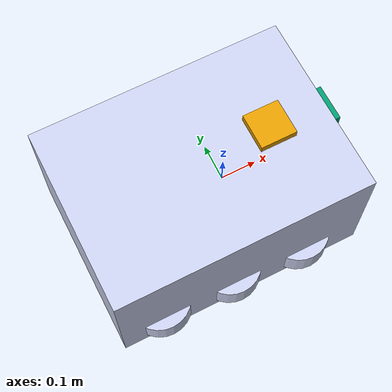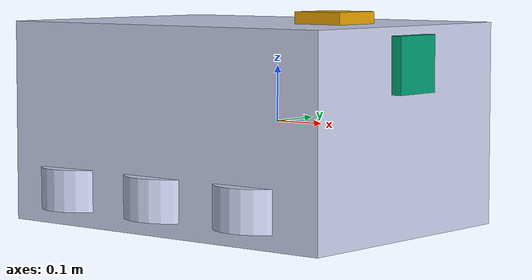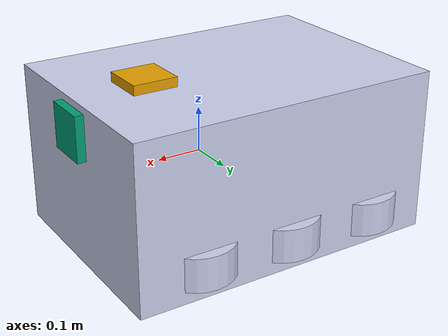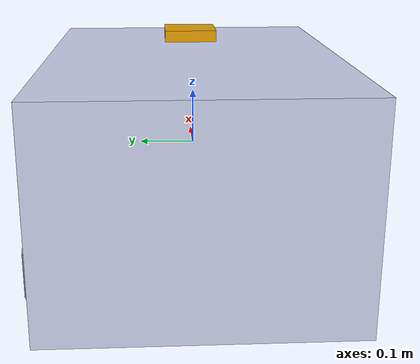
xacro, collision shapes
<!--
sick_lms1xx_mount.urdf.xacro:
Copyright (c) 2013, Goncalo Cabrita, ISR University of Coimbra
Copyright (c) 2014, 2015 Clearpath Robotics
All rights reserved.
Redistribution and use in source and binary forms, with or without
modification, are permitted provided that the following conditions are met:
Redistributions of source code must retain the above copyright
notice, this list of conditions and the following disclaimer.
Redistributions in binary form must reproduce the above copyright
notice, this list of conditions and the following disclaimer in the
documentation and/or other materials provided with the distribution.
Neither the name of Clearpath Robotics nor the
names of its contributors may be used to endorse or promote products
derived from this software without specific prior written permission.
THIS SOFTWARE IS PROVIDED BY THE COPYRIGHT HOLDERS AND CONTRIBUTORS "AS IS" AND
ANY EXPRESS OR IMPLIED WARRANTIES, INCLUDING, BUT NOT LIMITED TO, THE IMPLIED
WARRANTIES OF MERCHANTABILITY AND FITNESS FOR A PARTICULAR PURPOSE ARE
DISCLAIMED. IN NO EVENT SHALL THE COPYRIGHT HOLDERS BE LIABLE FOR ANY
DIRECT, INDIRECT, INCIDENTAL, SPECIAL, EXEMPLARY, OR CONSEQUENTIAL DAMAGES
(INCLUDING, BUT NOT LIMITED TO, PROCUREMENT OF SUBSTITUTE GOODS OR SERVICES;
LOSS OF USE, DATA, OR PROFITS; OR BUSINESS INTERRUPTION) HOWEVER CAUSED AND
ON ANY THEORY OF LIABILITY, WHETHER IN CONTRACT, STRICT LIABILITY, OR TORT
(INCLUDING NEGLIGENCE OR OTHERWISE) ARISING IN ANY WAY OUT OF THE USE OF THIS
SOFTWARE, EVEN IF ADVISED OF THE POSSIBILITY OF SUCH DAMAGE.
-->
<?xml version="1.0"?>

<robot
  name="argo_urdf_2" xmlns:xacro="http://www.ros.org/wiki/xacro">

  <xacro:property name="camera_link" value="0.05" /> <!-- Size of square 'camera' box -->
  <!-- Import all Gazebo-customization elements, including Gazebo colors -->
  <xacro:include filename="$(find argo_description)/urdf/argo_urdf_2.gazebo" />
  <!-- Import Rviz colors -->
  <xacro:include filename="$(find argo_description)/urdf/materials.xacro" />
  <xacro:include filename="$(find argo_description)/urdf/accessories/kinect_camera.urdf.xacro"/>
  <xacro:include filename="$(find argo_description)/urdf/accessories/sick_lms1xx_mount.urdf.xacro"/>
  <xacro:include filename="$(find argo_description)/urdf/accessories/sensor_arch.urdf.xacro"/>

    <property name="M_PI" value="3.14159"/>

<link name="base_link"/>

  <link
    name="argo_base">
    <inertial>
      <origin
        xyz="-0.0287146112802265 2.27427526650059E-06 -0.0381581636610044"
        rpy="0 0 0" />
      <mass
        value="32.9230854907662" />
      <inertia
        ixx="0.50262556870673"
        ixy="2.64755785172109E-05"
        ixz="0.0516273031694707"
        iyy="1.30944756370371"
        iyz="6.39030326038844E-06"
        izz="1.57981157521551" />
    </inertial>
    <visual>
      <origin
        xyz="0 0 0"
        rpy="0 0 0" />
      <geometry>
        <mesh
          filename="package://argo_description/meshes/argo_base.STL" />
      </geometry>
      <material
        name="">
        <color
          rgba="0.792156862745098 0.819607843137255 0.933333333333333 1" />
      </material>
    </visual>
    <collision>
      <origin
        xyz="0 0 0"
        rpy="0 0 0" />
      <geometry>
        <mesh
          filename="package://argo_description/meshes/argo_base_col.STL" />
      </geometry>
    </collision>
  </link>
  <joint name="base_link_joint" type="fixed">
      <origin xyz="0 0 0" rpy="0 0 0" />
      <parent link="base_link" />
      <child link="argo_base" />
    </joint>
  <link
    name="FLW">
    <inertial>
      <origin
        xyz="0 0.0156139504736138 0"
        rpy="0 0 0" />
      <mass
        value="1.50789368049402" />
      <inertia
        ixx="0.00365307678558648"
        ixy="5.1636108652648E-20"
        ixz="2.64359085585098E-19"
        iyy="0.00597955732075583"
        iyz="-2.08311224067256E-21"
        izz="0.00365307678558648" />
    </inertial>
    <visual>
      <origin
        xyz="0 0 0"
        rpy="0 0 0" />
      <geometry>
        <mesh
          filename="package://argo_description/meshes/FLW.STL" />
      </geometry>
      <material
        name="">
        <color
          rgba="0.792156862745098 0.819607843137255 0.933333333333333 1" />
      </material>
    </visual>
    <collision>
      <origin
        xyz="0 0 0"
        rpy="0 0 0" />
      <geometry>
        <!--mesh
          filename="package://argo_description/meshes/FLW_col.STL" /-->
          <cylinder length="0.0762" radius="0.085" />
      </geometry>
    </collision>
  </link>
  <joint
    name="FLW_cont"
    type="continuous">
    <origin
      xyz="0.12882 0.19812 -0.12406"
      rpy="0 -1.1994E-16 0" />
    <parent
      link="argo_base" />
    <child
      link="FLW" />
    <axis
      xyz="0 1 0" />
  </joint>
  <link
    name="MLW">
    <inertial>
      <origin
        xyz="-1.11022302462516E-16 0.0156139504736138 -2.77555756156289E-17"
        rpy="0 0 0" />
      <mass
        value="1.50789368049402" />
      <inertia
        ixx="0.00365307678558648"
        ixy="-1.96783860550682E-20"
        ixz="-1.53748539592062E-19"
        iyy="0.00597955732075583"
        iyz="2.56422756461994E-20"
        izz="0.00365307678558648" />
    </inertial>
    <visual>
      <origin
        xyz="0 0 0"
        rpy="0 0 0" />
      <geometry>
        <mesh
          filename="package://argo_description/meshes/MLW.STL" />
      </geometry>
      <material
        name="">
        <color
          rgba="0.792156862745098 0.819607843137255 0.933333333333333 1" />
      </material>
    </visual>
    <collision>
      <origin
        xyz="0 0 0"
        rpy="0 0 0" />
      <geometry>
        <!--mesh
          filename="package://argo_description/meshes/MLW_col.STL" /-->
          <cylinder length="0.0762" radius="0.085" />
      </geometry>
    </collision>
  </link>
  <joint
    name="MLW_cont"
    type="continuous">
    <origin
      xyz="-0.079459 0.19812 -0.12406"
      rpy="0 -1.1994E-16 0" />
    <parent
      link="argo_base" />
    <child
      link="MLW" />
    <axis
      xyz="0 1 0" />
  </joint>
  <link
    name="RLW">
    <inertial>
      <origin
        xyz="1.11022302462516E-16 0.0156139504736138 -8.32667268468867E-17"
        rpy="0 0 0" />
      <mass
        value="1.50789368049402" />
      <inertia
        ixx="0.00365307678558648"
        ixy="-7.0757132097532E-20"
        ixz="2.68751351881889E-19"
        iyy="0.00597955732075583"
        iyz="1.10554828062947E-19"
        izz="0.00365307678558648" />
    </inertial>
    <visual>
      <origin
        xyz="0 0 0"
        rpy="0 0 0" />
      <geometry>
        <mesh
          filename="package://argo_description/meshes/RLW.STL" />
      </geometry>
      <material
        name="">
        <color
          rgba="0.792156862745098 0.819607843137255 0.933333333333333 1" />
      </material>
    </visual>
    <collision>
      <origin
        xyz="0 0 0"
        rpy="0 0 0" />
      <geometry>
        <!--mesh
          filename="package://argo_description/meshes/RLW_col.STL" /-->
          <cylinder length="0.0762" radius="0.085" />
      </geometry>
    </collision>
  </link>
  <joint
    name="RLW_cont"
    type="continuous">
    <origin
      xyz="-0.28774 0.19812 -0.12406"
      rpy="0 -1.1994E-16 0" />
    <parent
      link="argo_base" />
    <child
      link="RLW" />
    <axis
      xyz="0 1 0" />
  </joint>
  <link
    name="FRW">
    <inertial>
      <origin
        xyz="5.55111512312578E-17 -0.0156139504736139 0"
        rpy="0 0 0" />
      <mass
        value="1.50789368049402" />
      <inertia
        ixx="0.00365307678558648"
        ixy="4.05259849993083E-20"
        ixz="4.25308640713539E-19"
        iyy="0.00597955732075583"
        iyz="-4.92635009524994E-20"
        izz="0.00365307678558648" />
    </inertial>
    <visual>
      <origin
        xyz="0 0 0"
        rpy="0 0 0" />
      <geometry>
        <mesh
          filename="package://argo_description/meshes/FRW.STL" />
      </geometry>
      <material
        name="">
        <color
          rgba="0.792156862745098 0.819607843137255 0.933333333333333 1" />
      </material>
    </visual>
    <collision>
      <origin
        xyz="0 0 0"
        rpy="0 0 0" />
      <geometry>
        <!--mesh
          filename="package://argo_description/meshes/FRW_col.STL" /-->
          <cylinder length="0.0762" radius="0.085" />
      </geometry>
    </collision>
  </link>
  <joint
    name="FRW_cont"
    type="continuous">
    <origin
      xyz="0.128821215414625 -0.19812 -0.124058737135444"
      rpy="0 0 0" />
    <parent
      link="argo_base" />
    <child
      link="FRW" />
    <axis
      xyz="0 1 0" />
  </joint>
  <link
    name="MRW">
    <inertial>
      <origin
        xyz="0 -0.0156139504736138 1.38777878078145E-16"
        rpy="0 0 0" />
      <mass
        value="1.50789368049402" />
      <inertia
        ixx="0.00365307678558648"
        ixy="1.31117846911124E-21"
        ixz="-5.15282286567131E-19"
        iyy="0.00597955732075583"
        iyz="-2.1351225407273E-20"
        izz="0.00365307678558648" />
    </inertial>
    <visual>
      <origin
        xyz="0 0 0"
        rpy="0 0 0" />
      <geometry>
        <mesh
          filename="package://argo_description/meshes/MRW.STL" />
      </geometry>
      <material
        name="">
        <color
          rgba="0.792156862745098 0.819607843137255 0.933333333333333 1" />
      </material>
    </visual>
    <collision>
      <origin
        xyz="0 0 0"
        rpy="0 0 0" />
      <geometry>
        <!--mesh
          filename="package://argo_description/meshes/MRW_col.STL" /-->
          <cylinder length="0.0762" radius="0.085" />
      </geometry>
    </collision>
  </link>
  <joint
    name="MRW_cont"
    type="continuous">
    <origin
      xyz="-0.079459 -0.19812 -0.12406"
      rpy="0 -1.1994E-16 0" />
    <parent
      link="argo_base" />
    <child
      link="MRW" />
    <axis
      xyz="0 1 0" />
  </joint>
  <link
    name="RRW">
    <inertial>
      <origin
        xyz="-1.11022302462516E-16 -0.0156139504736139 0"
        rpy="0 0 0" />
      <mass
        value="1.50789368049402" />
      <inertia
        ixx="0.00365307678558648"
        ixy="1.06637185456317E-19"
        ixz="1.35525271560688E-20"
        iyy="0.00597955732075583"
        iyz="-1.42529762888991E-20"
        izz="0.00365307678558648" />
    </inertial>
    <visual>
      <origin
        xyz="0 0 0"
        rpy="0 0 0" />
      <geometry>
        <mesh
          filename="package://argo_description/meshes/RRW.STL" />
      </geometry>
      <material
        name="">
        <color
          rgba="0.792156862745098 0.819607843137255 0.933333333333333 1" />
      </material>
    </visual>
    <collision>
      <origin
        xyz="0 0 0"
        rpy="0 0 0" />
      <geometry>
        <!--mesh
          filename="package://argo_description/meshes/RRW_col.STL" /-->
          <cylinder length="0.0762" radius="0.085" />
      </geometry>
    </collision>
  </link>
  <joint
    name="RRW_cont"
    type="continuous">
    <origin
      xyz="-0.28774 -0.19812 -0.12406"
      rpy="0 -0.010714 0" />
    <parent
      link="argo_base" />
    <child
      link="RRW" />
    <axis
      xyz="0 1 0" />
  </joint>

   <!-- Hokuyo Laser -->
    <joint name="hokuyo_joint" type="fixed">
    <axis xyz="0 1 0" />
    <origin xyz="0.128821215414625 0 0.15" rpy="0 0 3.14"/>
    <parent link="argo_base"/>
    <child link="hokuyo_link"/>
  </joint>
  <link name="hokuyo_link">
    <collision>
      <origin xyz="0 0 0" rpy="0 0 0"/>
      <geometry>
	<box size="0.1 0.1 0.1"/>
      </geometry>
    </collision>

    <visual>
      <origin xyz="0 0 0" rpy="0 0 0"/>
      <geometry>
        <mesh filename="package://argo_description/meshes/hokuyo.dae"/>
      </geometry>
    </visual>

    <inertial>
      <mass value="1e-5" />
      <origin xyz="0 0 0" rpy="0 0 0"/>
      <inertia ixx="1e-6" ixy="0" ixz="0" iyy="1e-6" iyz="0" izz="1e-6" />
    </inertial>
  </link>

  <joint name="camera_joint" type="fixed">
    <axis xyz="0 1 0" />
    <origin xyz="0.128821215414625 0 0.14" rpy="0 0 0"/>
    <parent link="argo_base"/>
    <child link="camera_link"/>
  </joint>

  <!-- Camera -->
  <link name="camera_link">
    <collision>
      <origin xyz="0 0 0" rpy="0 0 0"/>
      <geometry>
	<box size="${camera_link} ${camera_link} ${camera_link}"/>
      </geometry>
    </collision>

    <visual>
      <origin xyz="0 0 0" rpy="0 0 0"/>
      <geometry>
	<box size="${camera_link} ${camera_link} ${camera_link}"/>
      </geometry>
      <material name="red"/>
    </visual>

    <inertial>
      <mass value="1e-5" />
      <origin xyz="0 0 0" rpy="0 0 0"/>
      <inertia ixx="1e-6" ixy="0" ixz="0" iyy="1e-6" iyz="0" izz="1e-6" />
    </inertial>
  </link>

  <transmission name="FL_wheel_trans" type="SimpleTransmission">
			<type>transmission_interface/SimpleTransmission</type>
			<actuator name="FL_wheel_motor">
				<mechanicalReduction>1</mechanicalReduction>
			</actuator>
			<joint name="FLW_cont">
				<hardwareInterface>VelocityJointInterface</hardwareInterface>
			</joint>
		</transmission>

  <transmission name="ML_wheel_trans" type="SimpleTransmission">
			<type>transmission_interface/SimpleTransmission</type>
			<actuator name="ML_wheel_motor">
				<mechanicalReduction>1</mechanicalReduction>
			</actuator>
			<joint name="MLW_cont">
				<hardwareInterface>VelocityJointInterface</hardwareInterface>
			</joint>
		</transmission>

  <transmission name="RL_wheel_trans" type="SimpleTransmission">
			<type>transmission_interface/SimpleTransmission</type>
			<actuator name="RL_wheel_motor">
				<mechanicalReduction>1</mechanicalReduction>
			</actuator>
			<joint name="RLW_cont">
				<hardwareInterface>VelocityJointInterface</hardwareInterface>
			</joint>
		</transmission>

  <transmission name="FR_wheel_trans" type="SimpleTransmission">
			<type>transmission_interface/SimpleTransmission</type>
			<actuator name="FR_wheel_motor">
				<mechanicalReduction>1</mechanicalReduction>
			</actuator>
			<joint name="FRW_cont">
				<hardwareInterface>VelocityJointInterface</hardwareInterface>
			</joint>
		</transmission>

  <transmission name="MR_wheel_trans" type="SimpleTransmission">
			<type>transmission_interface/SimpleTransmission</type>
			<actuator name="MR_wheel_motor">
				<mechanicalReduction>1</mechanicalReduction>
			</actuator>
			<joint name="MRW_cont">
				<hardwareInterface>VelocityJointInterface</hardwareInterface>
			</joint>
		</transmission>

  <transmission name="RR_wheel_trans" type="SimpleTransmission">
			<type>transmission_interface/SimpleTransmission</type>
			<actuator name="RR_wheel_motor">
				<mechanicalReduction>1</mechanicalReduction>
			</actuator>
			<joint name="RRW_cont">
				<hardwareInterface>VelocityJointInterface</hardwareInterface>
			</joint>
		</transmission>

      <sick_lms1xx_mount prefix="base" topic="scan"/>

      <joint name="laser_mount_joint" type="fixed">
        <origin xyz="$(optenv ARGO_LMS1XX_XYZ 0.2206 0.0 0.00635)"
                rpy="$(optenv ARGO_LMS1XX_RPY 0.0 0.0 0.0)" />
        <parent link="argo_base" />
        <child link="base_laser_mount" />
      </joint>

</robot>

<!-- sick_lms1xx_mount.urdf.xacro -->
<robot xmlns:xacro="http://ros.org/wiki/xacro">

  <xacro:include filename="$(find lms1xx)/urdf/sick_lms1xx.urdf.xacro" />

  <xacro:macro name="sick_lms1xx_mount" params="prefix topic">

  <sick_lms1xx frame="${prefix}_laser" topic="${topic}" />

    <link name="${prefix}_laser_mount">
      <visual>
        <origin xyz="0 0 0" rpy="0 0 ${-M_PI/2}" />
        <geometry>
          <!-- Origin of this mesh is the base of the bracket. -->
          <mesh filename="package://argo_description/meshes/accessories/lms1xx_mount.dae" />
        </geometry>
      </visual>
      <collision>
        <origin xyz="0 0 .0585" rpy="0 0 0" />
        <geometry>
          <box size=".1 .108 .117" />
        </geometry>
      </collision>
    </link>

    <joint name="${prefix}_laser_joint" type="fixed">
      <!-- This offset is from the base of the bracket to the LIDAR's focal point. -->
      <origin xyz="0.0352 0 0.0566" rpy="${M_PI} 0 0" />
      <parent link="${prefix}_laser_mount" />
      <child link="${prefix}_laser" />
    </joint>

  </xacro:macro>

</robot>

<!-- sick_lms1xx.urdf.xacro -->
<robot xmlns:xacro="http://www.ros.org/wiki/xacro">

  <xacro:macro name="sick_lms1xx" params="frame:=laser topic:=scan sample_size:=720 update_rate:=5
               min_angle:=-2.35619 max_angle:=2.35619 min_range:=0.1 max_range:=30.0 robot_namespace:=/" >
    <link name="${frame}">
      <inertial>
        <mass value="1.1" />
        <origin xyz="0 0 0" />
        <inertia ixx="${0.0833333 * 1.1 * (0.102*0.102 + 0.152*0.152)}" ixy="0.0" ixz="0.0"
          iyy="${0.0833333 * 1.1 * (0.105*0.105 + 0.152*0.152)}" iyz="0.0"
          izz="${0.0833333 * 1.1 * (0.105*0.105 + 0.102*0.102)}" />
      </inertial>
      <visual>
        <origin xyz="0 0 0" rpy="0 0 0" />
        <geometry>
          <!-- Origin of this mesh is the focal point of the LIDAR. -->
          <mesh filename="file://$(find lms1xx)/meshes/sick-lms1xx.dae" />
        </geometry>
      </visual>
      <collision>
        <origin xyz="0 0 -0.05" rpy="0 0 0" />
        <geometry>
          <box size="0.105 0.1 0.1" />
        </geometry>
      </collision>
    </link>

    <gazebo reference="${frame}">
      <turnGravityOff>true</turnGravityOff>
      <sensor type="ray" name="${frame}">
        <pose>0 0 0 0 0 0</pose>
        <visualize>false</visualize>
        <update_rate>${update_rate}</update_rate>
        <ray>
          <scan>
            <horizontal>
              <samples>${sample_size}</samples>
              <resolution>1</resolution>
              <min_angle>${min_angle}</min_angle>
              <max_angle>${max_angle}</max_angle>
            </horizontal>
          </scan>
          <range>
            <min>${min_range}</min>
            <max>${max_range}</max>
            <resolution>0.01</resolution>
          </range>
          <noise>
            <type>gaussian</type>
            <mean>0.0</mean>
            <stddev>0.001</stddev>
          </noise>
        </ray>
        <plugin name="${frame}_scan" filename="libgazebo_ros_ray_sensor.so">
          <ros>
            <remapping>~/out:=${topic}</remapping>
            <qos>
              <topic name="${topic}">
                  <publisher>
                      <reliability>best_effort</reliability>
                  </publisher>
              </topic>
            </qos>
          </ros>
          <frame_name>${frame}</frame_name>
          <robot_namespace>${robot_namespace}</robot_namespace>
          <output_type>sensor_msgs/LaserScan</output_type>
        </plugin>
      </sensor>
    </gazebo>

  </xacro:macro>
</robot>
